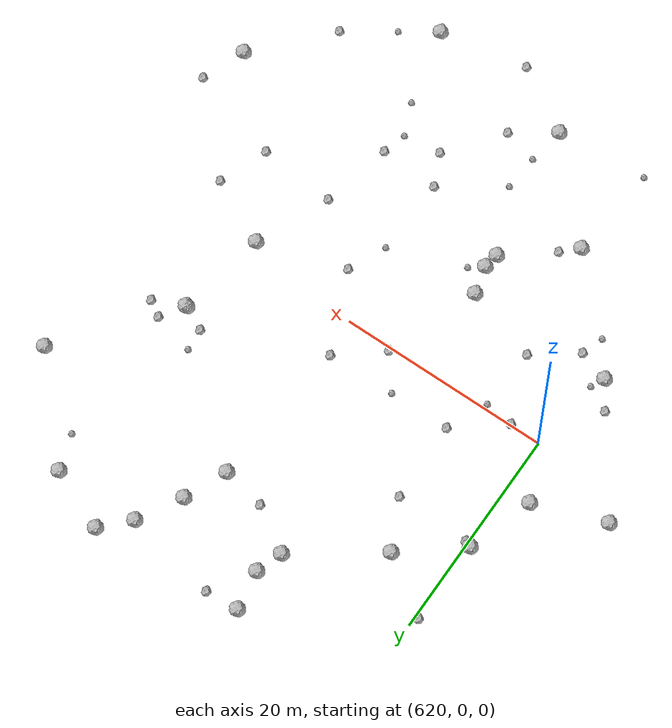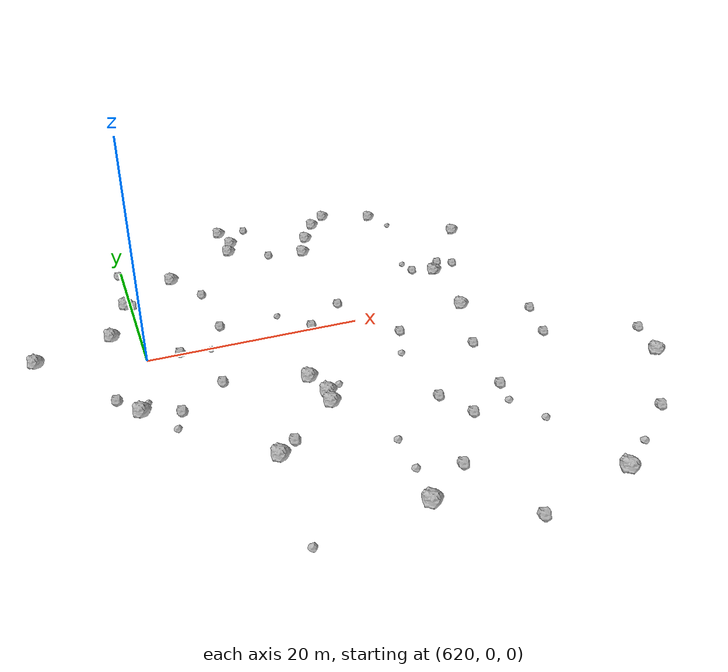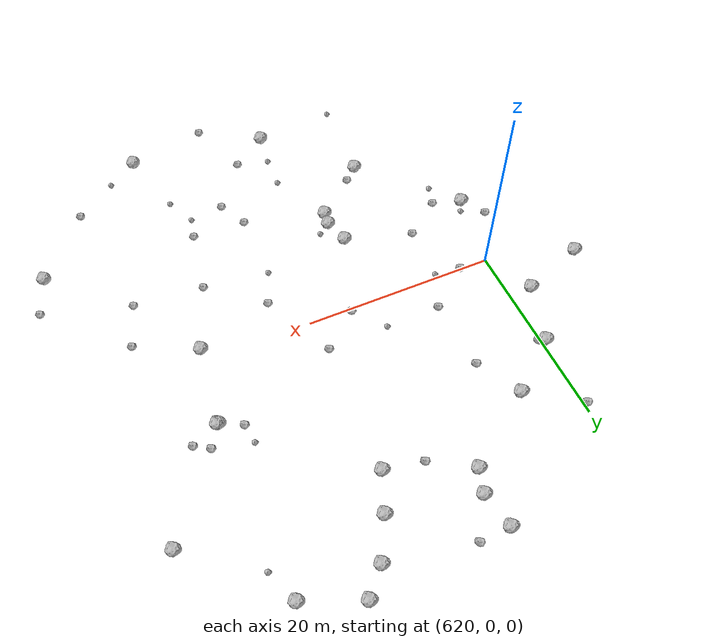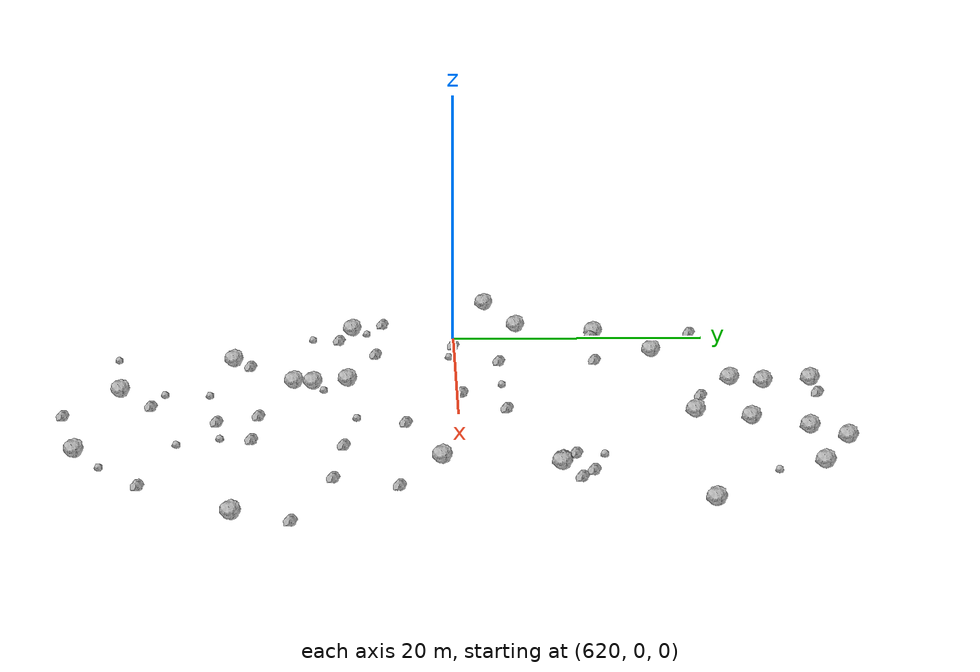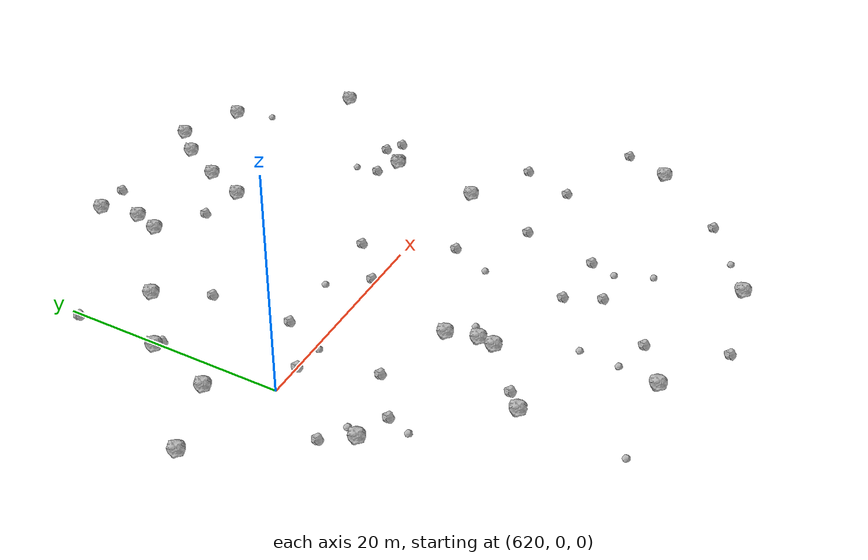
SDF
<sdf version="1.6">
 <world name="default">
  <include><uri>model://sun</uri></include>
  <model name="rock1_16_3">
   <include><uri>model://rock1</uri><pose>647.0460490039844 28.25291273011502 0.5 0 0 0</pose></include>
  </model>
  <model name="rock1_16_4">
   <include><uri>model://rock1</uri><pose>652.7141455196551 25.864692670821057 0.5 0 0 0</pose></include>
  </model>
  <model name="rock1_16_5">
   <include><uri>model://rock1</uri><pose>642.3853522771972 21.699130965440418 0.5 0 0 0</pose></include>
  </model>
  <model name="rock1_16_6">
   <include><uri>model://rock1</uri><pose>632.7789071672082 27.245464299933545 0.5 0 0 0</pose></include>
  </model>
  <model name="rock1_16_7">
   <include><uri>model://rock1</uri><pose>632.3357292861692 -8.393778195363602 0.5 0 0 0</pose></include>
  </model>
  <model name="rock1_16_8">
   <include><uri>model://rock1</uri><pose>651.1037504740267 -1.4083941552253307 0.5 0 0 0</pose></include>
  </model>
  <model name="rock1_16_9">
   <include><uri>model://rock1</uri><pose>652.6628469710311 7.107363676473106 0.5 0 0 0</pose></include>
  </model>
  <model name="rock1_16_10">
   <include><uri>model://rock1</uri><pose>634.8270599793199 -25.66336009145903 0.5 0 0 0</pose></include>
  </model>
  <model name="rock1_16_11">
   <include><uri>model://rock1</uri><pose>610.9420228787845 2.705068904897445 0.5 0 0 0</pose></include>
  </model>
  <model name="rock1_16_12">
   <include><uri>model://rock1</uri><pose>652.5237948853458 7.13985968084031 0.5 0 0 0</pose></include>
  </model>
  <model name="rock1_16_13">
   <include><uri>model://rock1</uri><pose>618.5194254028971 -8.152766101679404 0.5 0 0 0</pose></include>
  </model>
  <model name="rock1_16_14">
   <include><uri>model://rock1</uri><pose>640.6857351683508 17.69891054924087 0.5 0 0 0</pose></include>
  </model>
  <model name="rock1_16_15">
   <include><uri>model://rock1</uri><pose>626.9875573308979 -17.35796930737246 0.5 0 0 0</pose></include>
  </model>
  <model name="rock1_16_16">
   <include><uri>model://rock1</uri><pose>632.795377464755 -12.511765476571345 0.5 0 0 0</pose></include>
  </model>
  <model name="rock1_16_17">
   <include><uri>model://rock1</uri><pose>633.0390711003101 -11.042688799482193 0.5 0 0 0</pose></include>
  </model>
  <model name="rock1_16_18">
   <include><uri>model://rock1</uri><pose>649.2585462656187 -27.891156632480232 0.5 0 0 0</pose></include>
  </model>
  <model name="rock1_16_19">
   <include><uri>model://rock1</uri><pose>619.5888277490756 11.309180528502573 0.5 0 0 0</pose></include>
  </model>
  <model name="rock1_16_20">
   <include><uri>model://rock1</uri><pose>624.884469243786 15.58307748501116 0.5 0 0 0</pose></include>
  </model>
  <model name="rock1_16_21">
   <include><uri>model://rock1</uri><pose>660.626461289485 17.311270131517908 0.5 0 0 0</pose></include>
  </model>
  <model name="rock1_16_22">
   <include><uri>model://rock1</uri><pose>662.8088813576954 -16.024841667650996 0.5 0 0 0</pose></include>
  </model>
  <model name="rock1_16_23">
   <include><uri>model://rock1</uri><pose>633.3821267310318 23.53708083667921 0.5 0 0 0</pose></include>
  </model>
  <model name="rock1_16_24">
   <include><uri>model://rock1</uri><pose>644.6735648244597 25.762465704613817 0.5 0 0 0</pose></include>
  </model>
  <model name="rock1_16_25">
   <include><uri>model://rock1</uri><pose>632.5445828211923 21.056286893881186 0.5 0 0 0</pose></include>
  </model>
  <model name="rock1_16_26">
   <include><uri>model://rock1</uri><pose>617.5834286969597 5.091044286305653 0.5 0 0 0</pose></include>
  </model>
  <model name="rock2_16_0">
   <include><uri>model://rock2</uri><pose>635.5595841736182 0.3525356298168738 0.3 0 0 0</pose></include>
  </model>
  <model name="rock2_16_1">
   <include><uri>model://rock2</uri><pose>657.1732900907788 -4.468063605618507 0.3 0 0 0</pose></include>
  </model>
  <model name="rock2_16_2">
   <include><uri>model://rock2</uri><pose>642.8980132647557 -3.952745820342436 0.3 0 0 0</pose></include>
  </model>
  <model name="rock2_16_3">
   <include><uri>model://rock2</uri><pose>621.4409292655796 -9.162288392518377 0.3 0 0 0</pose></include>
  </model>
  <model name="rock2_16_4">
   <include><uri>model://rock2</uri><pose>622.9436470944187 -0.06004987522382521 0.3 0 0 0</pose></include>
  </model>
  <model name="rock2_16_5">
   <include><uri>model://rock2</uri><pose>619.6264388530066 19.085947986850954 0.3 0 0 0</pose></include>
  </model>
  <model name="rock2_16_6">
   <include><uri>model://rock2</uri><pose>627.1555417411417 10.976418680330404 0.3 0 0 0</pose></include>
  </model>
  <model name="rock2_16_7">
   <include><uri>model://rock2</uri><pose>620.2146112876829 11.057668966839607 0.3 0 0 0</pose></include>
  </model>
  <model name="rock2_16_8">
   <include><uri>model://rock2</uri><pose>641.1322379400517 -14.905916498570452 0.3 0 0 0</pose></include>
  </model>
  <model name="rock2_16_9">
   <include><uri>model://rock2</uri><pose>636.6212345581674 18.449490473063847 0.3 0 0 0</pose></include>
  </model>
  <model name="rock2_16_10">
   <include><uri>model://rock2</uri><pose>655.4616801559703 -9.143506310287954 0.3 0 0 0</pose></include>
  </model>
  <model name="rock2_16_11">
   <include><uri>model://rock2</uri><pose>616.8550237638486 -5.704473536166656 0.3 0 0 0</pose></include>
  </model>
  <model name="rock2_16_12">
   <include><uri>model://rock2</uri><pose>625.3701401273382 -6.239288676056876 0.3 0 0 0</pose></include>
  </model>
  <model name="rock2_16_13">
   <include><uri>model://rock2</uri><pose>650.3157607286311 8.221526239357857 0.3 0 0 0</pose></include>
  </model>
  <model name="rock2_16_14">
   <include><uri>model://rock2</uri><pose>635.9154951081018 27.423749714535717 0.3 0 0 0</pose></include>
  </model>
  <model name="rock2_16_15">
   <include><uri>model://rock2</uri><pose>638.6522523311172 -23.062862759186658 0.3 0 0 0</pose></include>
  </model>
  <model name="rock2_16_16">
   <include><uri>model://rock2</uri><pose>656.8815356823295 -22.770178050800908 0.3 0 0 0</pose></include>
  </model>
  <model name="rock2_16_17">
   <include><uri>model://rock2</uri><pose>640.889559381025 -29.46816813823909 0.3 0 0 0</pose></include>
  </model>
  <model name="rock2_16_18">
   <include><uri>model://rock2</uri><pose>648.1891013836778 -8.481166673507985 0.3 0 0 0</pose></include>
  </model>
  <model name="rock2_16_19">
   <include><uri>model://rock2</uri><pose>639.5437933060866 3.6480849072707855 0.3 0 0 0</pose></include>
  </model>
  <model name="rock2_16_20">
   <include><uri>model://rock2</uri><pose>664.3823077741754 -11.887403067844396 0.3 0 0 0</pose></include>
  </model>
  <model name="rock2_16_21">
   <include><uri>model://rock2</uri><pose>654.0647122626781 9.30417655027047 0.3 0 0 0</pose></include>
  </model>
  <model name="rock2_16_22">
   <include><uri>model://rock2</uri><pose>627.3520564850095 3.440763179016777 0.3 0 0 0</pose></include>
  </model>
  <model name="rock2_16_23">
   <include><uri>model://rock2</uri><pose>646.740611644833 -15.218301069214634 0.3 0 0 0</pose></include>
  </model>
  <model name="rock2_16_24">
   <include><uri>model://rock2</uri><pose>655.5200676464807 8.378171887798707 0.3 0 0 0</pose></include>
  </model>
  <model name="rock2_16_25">
   <include><uri>model://rock2</uri><pose>628.4820859947772 -15.985978868948209 0.3 0 0 0</pose></include>
  </model>
  <model name="rock2_16_26">
   <include><uri>model://rock2</uri><pose>642.5610286361306 -17.946389353529504 0.3 0 0 0</pose></include>
  </model>
  <model name="rock3_16_0">
   <include><uri>model://rock3</uri><pose>625.6453025505347 -0.46544972171379584 0.2 0 0 0</pose></include>
  </model>
  <model name="rock3_16_1">
   <include><uri>model://rock3</uri><pose>635.5862840631834 -18.807016446471998 0.2 0 0 0</pose></include>
  </model>
  <model name="rock3_16_2">
   <include><uri>model://rock3</uri><pose>652.4694229779825 -25.846724683201984 0.2 0 0 0</pose></include>
  </model>
  <model name="rock3_16_3">
   <include><uri>model://rock3</uri><pose>650.094666387461 10.276943960172687 0.2 0 0 0</pose></include>
  </model>
  <model name="rock3_16_4">
   <include><uri>model://rock3</uri><pose>634.2722148382416 -10.19484402215263 0.2 0 0 0</pose></include>
  </model>
  <model name="rock3_16_5">
   <include><uri>model://rock3</uri><pose>620.7377043609315 -11.295494754159442 0.2 0 0 0</pose></include>
  </model>
  <model name="rock3_16_6">
   <include><uri>model://rock3</uri><pose>619.118228232995 -6.991757078264062 0.2 0 0 0</pose></include>
  </model>
  <model name="rock3_16_7">
   <include><uri>model://rock3</uri><pose>626.1649245972342 -26.415263196941343 0.2 0 0 0</pose></include>
  </model>
  <model name="rock3_16_8">
   <include><uri>model://rock3</uri><pose>653.83074492582 22.428592002740913 0.2 0 0 0</pose></include>
  </model>
  <model name="rock3_16_9">
   <include><uri>model://rock3</uri><pose>635.3460186876407 -22.223981389464544 0.2 0 0 0</pose></include>
  </model>
  <model name="rock3_16_10">
   <include><uri>model://rock3</uri><pose>641.3211097274894 -7.61875441076495 0.2 0 0 0</pose></include>
  </model>
  <model name="rock3_16_11">
   <include><uri>model://rock3</uri><pose>646.1120339303052 -17.560196995798112 0.2 0 0 0</pose></include>
  </model>
  <model name="rock3_16_12">
   <include><uri>model://rock3</uri><pose>633.0754500961845 3.457981181769881 0.2 0 0 0</pose></include>
  </model>
  <model name="rock3_16_13">
   <include><uri>model://rock3</uri><pose>647.4419651581726 -20.650435567583507 0.2 0 0 0</pose></include>
  </model>
 </world>
</sdf>
